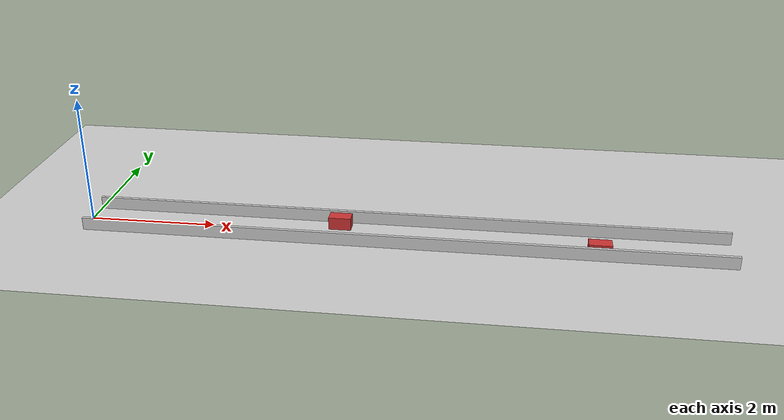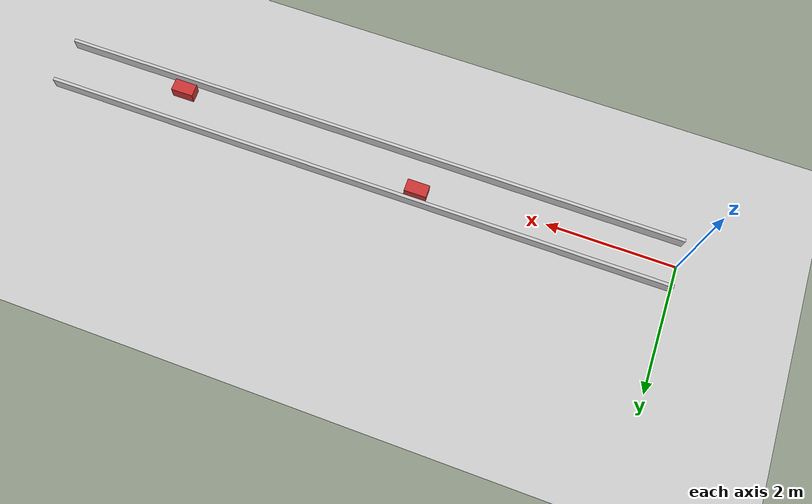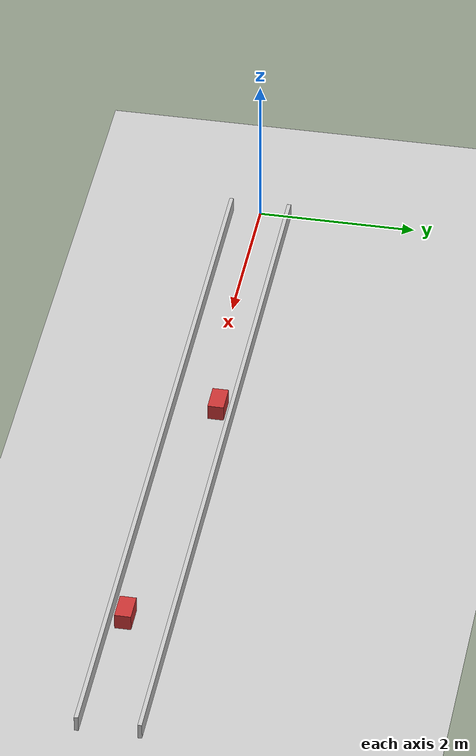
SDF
<?xml version="1.0" ?>
<sdf version="1.9">
  <world name="empty">
    <scene>
      <ambient>0.4 0.4 0.4 1</ambient>
      <background>0.7 0.7 0.7 1</background>
      <shadows>false</shadows>
    </scene>

    <light name="sun" type="directional">
      <cast_shadows>true</cast_shadows>
      <pose>0 0 10 0 0 0</pose>
      <diffuse>0.8 0.8 0.8 1</diffuse>
      <specular>0.2 0.2 0.2 1</specular>
      <attenuation>
        <range>1000</range>
        <constant>0.9</constant>
        <linear>0.01</linear>
        <quadratic>0.001</quadratic>
      </attenuation>
      <direction>-0.5 0.1 -0.9</direction>
    </light>

    <model name="ground_plane">
      <static>true</static>
      <link name="link">
        <collision name="collision">
          <geometry>
            <plane>
              <normal>0 0 1</normal>
              <size>100 100</size>
            </plane>
          </geometry>
        </collision>
        <visual name="visual">
          <geometry>
            <plane>
              <normal>0 0 1</normal>
              <size>100 100</size>
            </plane>
          </geometry>
          <material>
            <ambient>0.8 0.8 0.8 1</ambient>
            <diffuse>0.8 0.8 0.8 1</diffuse>
          </material>
        </visual>
      </link>
    </model>

    <model name="left_wall">
      <static>true</static>
      <link name="link">
        <pose>5.0 0.375 0.10 0 0 0</pose>
        <collision name="collision">
          <geometry>
            <box>
              <size>10.0 0.05 0.20</size>
            </box>
          </geometry>
        </collision>
        <visual name="visual">
          <geometry>
            <box>
              <size>10.0 0.05 0.20</size>
            </box>
          </geometry>
          <material>
            <ambient>1 1 1 1</ambient>
            <diffuse>0.8 0.8 0.8 1</diffuse>
          </material>
        </visual>
      </link>
    </model>

    <model name="right_wall">
      <static>true</static>
      <link name="link">
        <pose>5.0 -0.375 0.10 0 0 0</pose>
        <collision name="collision">
          <geometry>
            <box>
              <size>10.0 0.05 0.20</size>
            </box>
          </geometry>
        </collision>
        <visual name="visual">
          <geometry>
            <box>
              <size>10.0 0.05 0.20</size>
            </box>
          </geometry>
          <material>
            <ambient>1 1 1 1</ambient>
            <diffuse>0.8 0.8 0.8 1</diffuse>
          </material>
        </visual>
      </link>
    </model>

    <model name="obstacle_left_lane">
      <static>true</static>
      <link name="link">
        <pose>4.0 0.1875 0.10 0 0 0</pose>
        <collision name="collision">
          <geometry>
            <box>
              <size>0.35 0.20 0.20</size>
            </box>
          </geometry>
        </collision>
        <visual name="visual">
          <geometry>
            <box>
              <size>0.35 0.20 0.20</size>
            </box>
          </geometry>
          <material>
            <ambient>0.8 0.2 0.2 1</ambient>
            <diffuse>0.8 0.2 0.2 1</diffuse>
          </material>
        </visual>
      </link>
    </model>

    <model name="obstacle_right_lane">
      <static>true</static>
      <link name="link">
        <pose>8.0 -0.1875 0.10 0 0 0</pose>
        <collision name="collision">
          <geometry>
            <box>
              <size>0.35 0.20 0.20</size>
            </box>
          </geometry>
        </collision>
        <visual name="visual">
          <geometry>
            <box>
              <size>0.35 0.20 0.20</size>
            </box>
          </geometry>
          <material>
            <ambient>0.8 0.2 0.2 1</ambient>
            <diffuse>0.8 0.2 0.2 1</diffuse>
          </material>
        </visual>
      </link>
    </model>
  </world>
</sdf>
